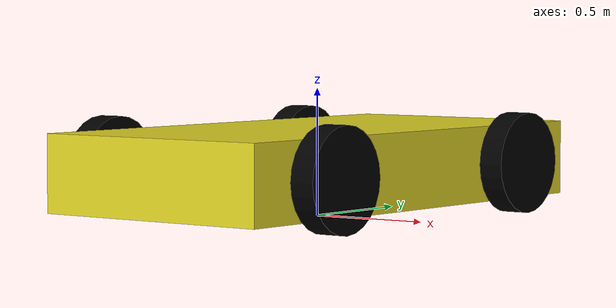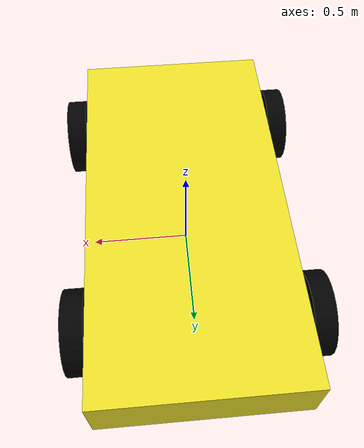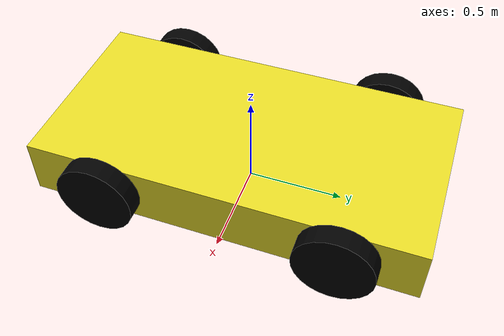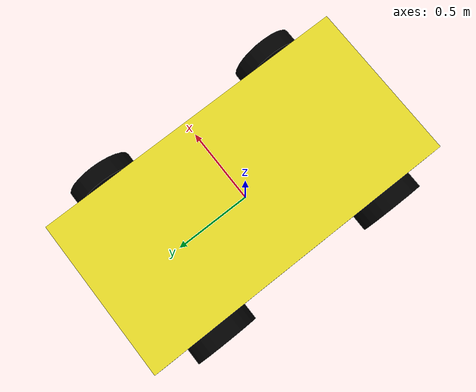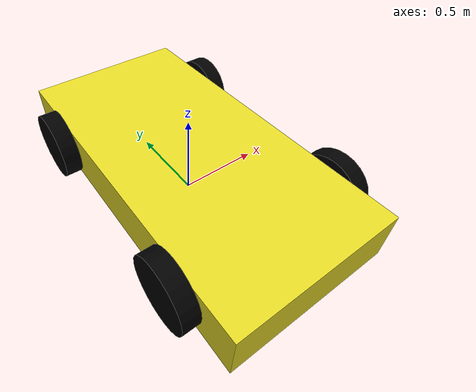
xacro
<?xml version="1.0"?>
<robot name="rbo" xmlns:xacro="http://www.ros.org/wiki/xacro">

  <!-- variable -->
  <xacro:property name="PI" value="3.1415926"/>
  <xacro:property name="car_width" value="1.0"/>
  <xacro:property name="car_length" value="2.0"/>
  <xacro:property name="car_height" value="0.3"/>
  <xacro:property name="wheel_length" value="0.1"/>
  <xacro:property name="wheel_radius" value="0.2"/>
  <xacro:property name="wheel_origin_xyz" value="0.0 0.0 0.0"/>
  <xacro:property name="wheel_origin_rpy" value="0.0 ${PI/2} 0.0"/>
  <xacro:property name="imu_width" value="1.0"/>
  <xacro:property name="imu_length" value="2.0"/>
  <xacro:property name="imu_height" value="0.3"/>

  <!-- rviz color -->
  <material name="blue">
    <color rgba="0 0 1 1"/>
  </material>
  <material name="black">
    <color rgba="0 0 0 1"/>
  </material>

  <!-- macro -->
  <xacro:macro name="default_inertial" params="mass">
    <inertial>
      <mass value="${mass}" />
      <inertia ixx="1.0" ixy="0.0" ixz="0.0" iyy="1.0" iyz="0.0" izz="1.0" />
    </inertial>
  </xacro:macro>

  <xacro:macro name="box_geometry" params="width length height">
    <geometry>
      <box size="${width} ${length} ${height}"/>
    </geometry>
  </xacro:macro>

  <xacro:macro name="cylinder_geometry" params="length radius">
    <geometry>
      <cylinder length="${length}" radius="${radius}"/>
    </geometry>
  </xacro:macro>

  <xacro:macro name="default_origin" params="xyz rpyaw">
    <origin xyz="${xyz}" rpy="${rpyaw}"/>
  </xacro:macro>

  <!-- base_link -->
  <link name="base_link"/>
  <joint name="base_link_car" type="fixed">
    <origin xyz="0.0 0.0 ${wheel_radius}" rpy="0.0 0.0 0.0"/>
    <parent link="base_link"/>
    <child link="imu_link"/>
  </joint>

  <link name="imu_link">
    <visual>
      <xacro:box_geometry width="${imu_width}" length="${imu_length}" height="${imu_height}"/>
      <material name="yellow"/>
    </visual>
    <collision>
      <xacro:box_geometry width="${imu_width}" length="${imu_length}" height="${imu_height}"/>
    </collision>
    <xacro:default_inertial mass="0.05"/>
  </link>

  <!-- wheel joint macro -->
  <!-- right:1 left:-1 -->
  <xacro:macro name="wheel_car_joint" params="wheel_name front_end left_right">
    <link name="${wheel_name}">
      <visual>
        <xacro:cylinder_geometry length="${wheel_length}" radius="${wheel_radius}"/>
        <xacro:default_origin xyz="${wheel_origin_xyz}" rpyaw="${wheel_origin_rpy}" />
        <material name="black"/>
      </visual>
      <collision>
        <xacro:cylinder_geometry length="${wheel_length}" radius="${wheel_radius}"/>
        <xacro:default_origin xyz="${wheel_origin_xyz}" rpyaw="${wheel_origin_rpy}" />
      </collision>
      <xacro:default_inertial mass="1.0"/>
    </link>

    <!-- joints -->
    <joint name="car_base_${wheel_name}" type="continuous">
      <origin xyz="${left_right*(wheel_length+car_width)/2.0} ${front_end*car_length*0.6/2.0} 0.0" rpy="0.0 0.0 0.0"/>
      <parent link="imu_link"/>
      <child link="${wheel_name}"/>
      <axis xyz="1.0 0.0 0.0"/>
    </joint>

    <gazebo reference="${wheel_name}">
      <material>Gazebo/Black</material>
      <mu1>0.5</mu1>
      <mu2>0.5</mu2>
    </gazebo>

    <transmission name="${wheel_name}_transmission">
      <type>transmission_interface/SimpleTransmission</type>
      <joint name="car_base_${wheel_name}">
        <hardwareInterface>hardware_interface/VelocityJointInterface</hardwareInterface>
      </joint>
      <actuator name="${wheel_name}_motor">
        <mechanicalReducction>1</mechanicalReducction>
      </actuator>
    </transmission>
  </xacro:macro>

  <xacro:wheel_car_joint wheel_name="front_right_wheel" front_end="1.0" left_right="1.0"/>
  <xacro:wheel_car_joint wheel_name="front_left_wheel" front_end="1.0" left_right="-1.0"/>
  <xacro:wheel_car_joint wheel_name="end_right_wheel" front_end="-1.0" left_right="1.0"/>
  <xacro:wheel_car_joint wheel_name="end_left_wheel" front_end="-1.0" left_right="-1.0"/>

  <!-- plagin -->
  <gazebo>
    <plugin name="differential_drive_controller" filename="libgazebo_ros_diff_drive.so">
      <alwaysOn>true</alwaysOn>
      <updateRate>50.0</updateRate>
      <leftJoint>car_base_front_left_wheel</leftJoint>
      <rightJoint>car_base_front_right_wheel</rightJoint>
      <wheelSeparation>1.0</wheelSeparation>
      <wheelDiameter>0.5</wheelDiameter>
      <torque>1.0</torque>
      <commandTopic>cmd_vel</commandTopic>
      <odometryTopic>odom</odometryTopic>
      <odometryFrame>odom</odometryFrame>
      <robotBaseFrame>base_link</robotBaseFrame>
      <publishWheelTF>true</publishWheelTF>
      <publishWheelJointState>true</publishWheelJointState>
      <legecyMode>false</legecyMode>
      <wheelAcceleration>1</wheelAcceleration>
    </plugin>
  </gazebo>

  <gazebo reference="imu_link">
    <gravity>true</gravity>
    <sensor name="imu_sensor" type="imu">
      <always_on>true</always_on>
      <update_rate>100</update_rate>
      <visualize>true</visualize>
      <topic>__default_topic__</topic>
      <plugin filename="libgazebo_ros_imu_sensor.so" name="imu_plugin">
        <topicName>imu</topicName>
        <bodyName>imu_link</bodyName>
        <updateRateHZ>100.0</updateRateHZ>
        <gaussianNoise>0.0</gaussianNoise>
        <xyzOffset>0 0 0</xyzOffset>
        <rpyOffset>0 0 0</rpyOffset>
        <frameName>imu_link</frameName>
      </plugin>
      <pose>0 0 0 0 0 0</pose>
    </sensor>
  </gazebo>

</robot>
